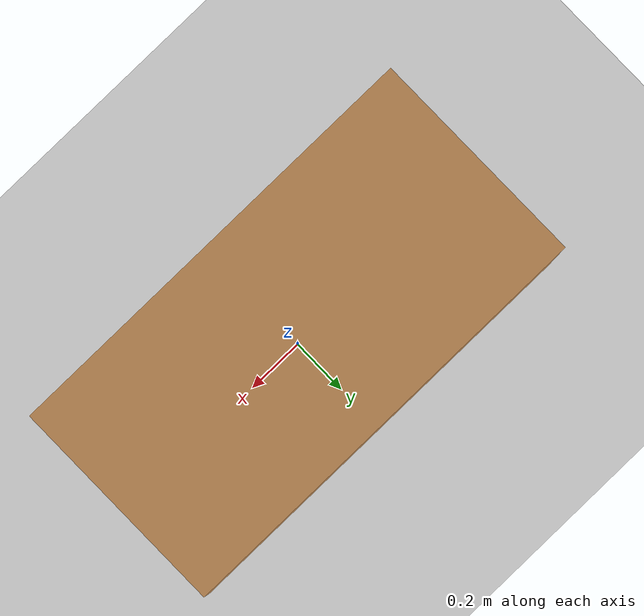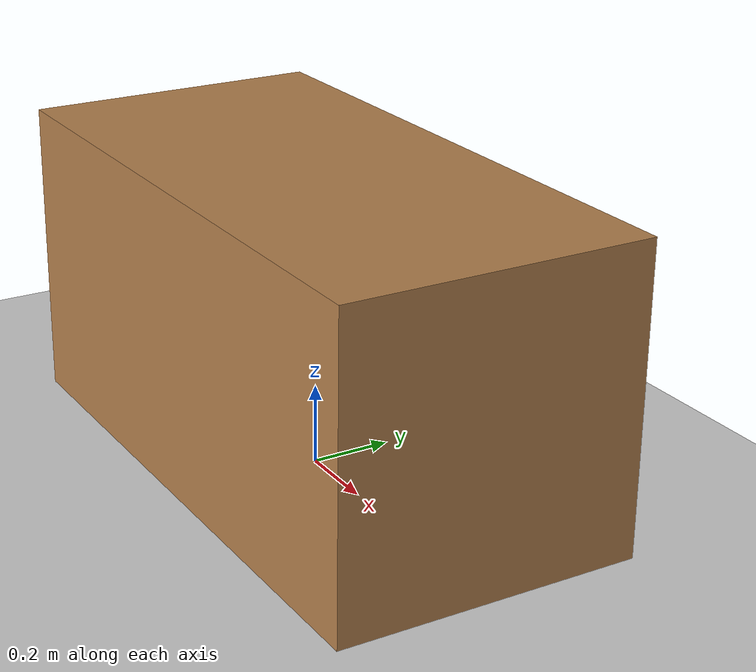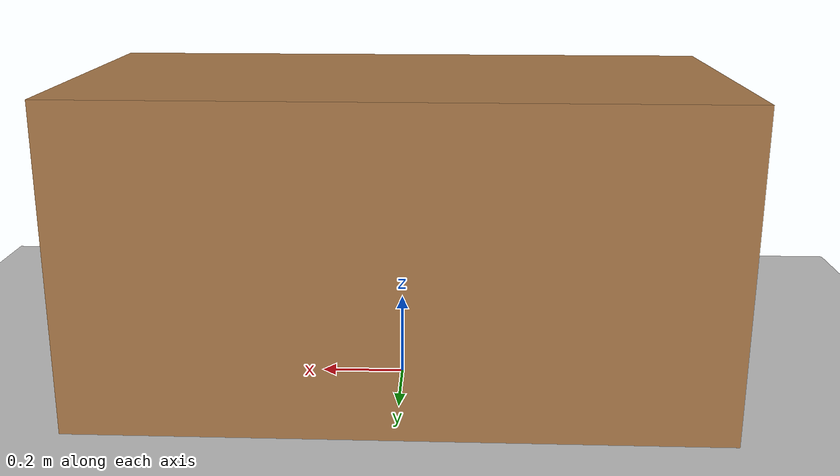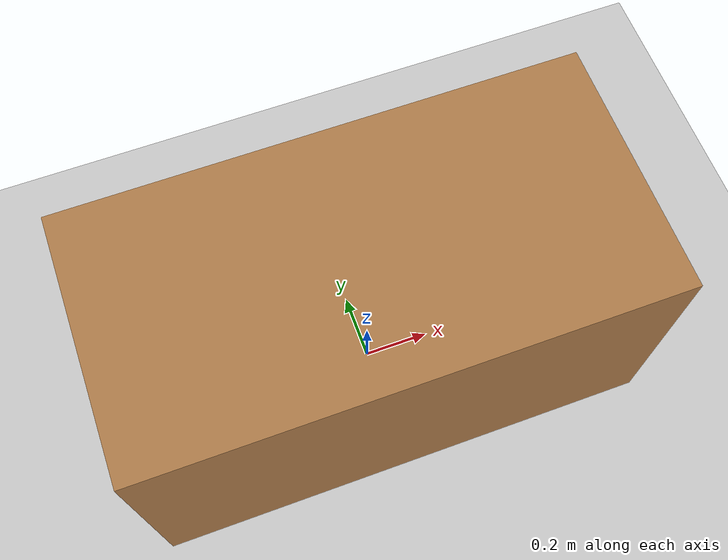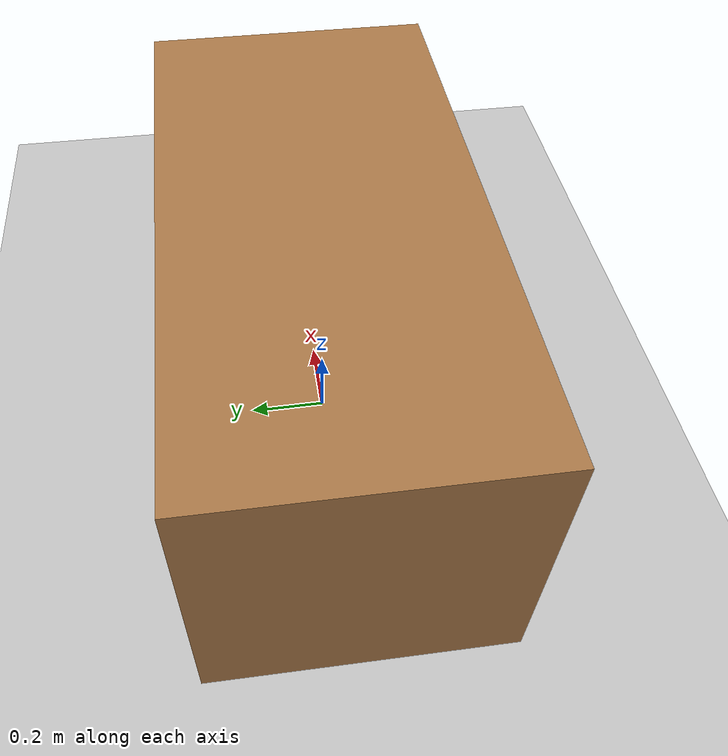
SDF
<?xml version="1.0" ?>
<sdf version="1.5">
  <world name="default">

    <!-- A global light source -->
    <include>
      <uri>model://sun</uri>
    </include>

    <!-- A ground plane -->
    <include>
      <uri>model://ground_plane</uri>
    </include>

    <include>
      <uri>model://DREAM_simple_table/</uri>
    </include>
  </world>
</sdf>

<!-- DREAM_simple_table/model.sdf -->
<sdf version="1.4">
  <model name="table">
    <!-- It is not affected by physics but collide with other objects -->
    <static>true</static>
    <link name="link">
      <!-- Inertia for a cuboid: https://en.wikipedia.org/wiki/List_of_moments_of_inertia -->
      <collision name="collision">
        <!-- Offset by half the height of the box -->
        <pose>0 0 0.375 0 0 0</pose>
        <geometry>
          <box>
            <size>1.5 0.75 0.75</size>
          </box>
        </geometry>
        <surface>
          <friction>
            <ode>
              <mu>0.6</mu>
              <mu2>0.6</mu2>
            </ode>
          </friction>
        </surface>
      </collision>
      <visual name="visual">
        <pose>0 0 0.375 0 0 0</pose>
        <geometry>
          <box>
            <size>1.5 0.75 0.75</size>
          </box>
        </geometry>
        <material>
          <script>
            <uri>file://media/materials/scripts/gazebo.material</uri>
            <name>Gazebo/Wood</name>
          </script>
        </material>
        <plugin name="color_plugin" filename="libDREAM_change_color.so"/>
      </visual>
    </link>
  </model>
</sdf>
